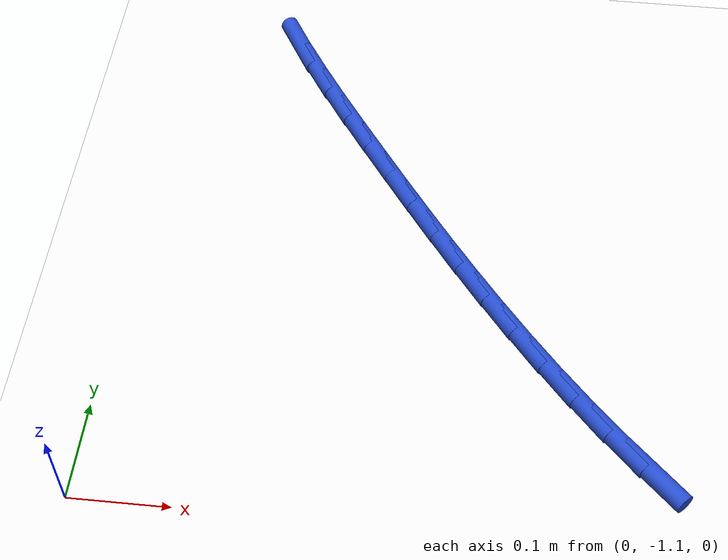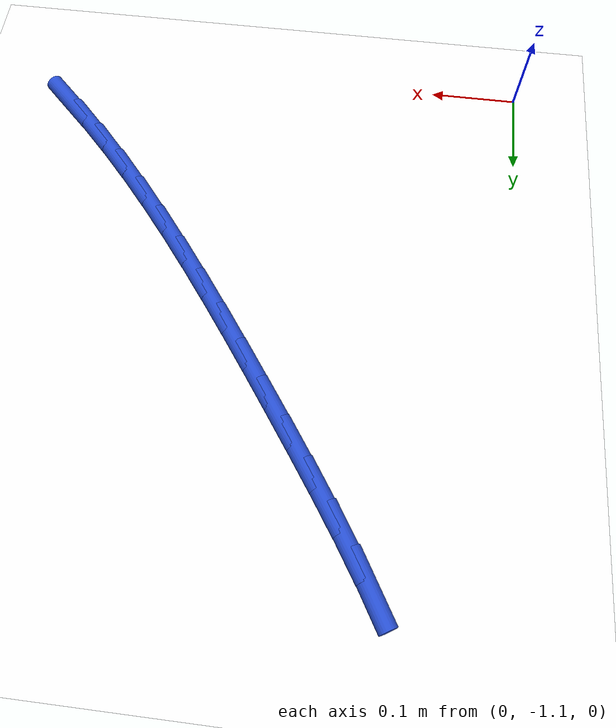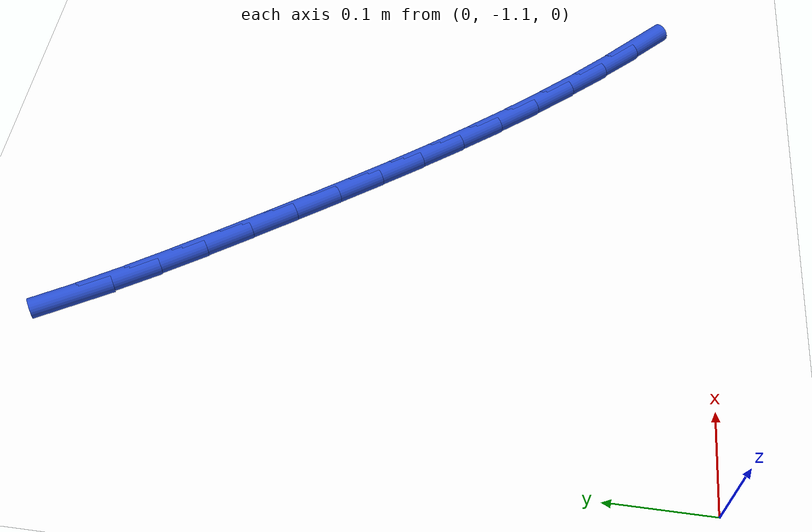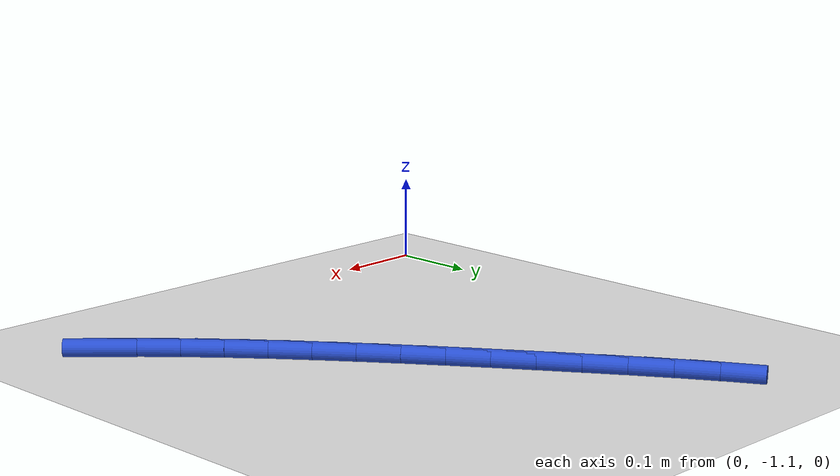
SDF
<sdf version="1.6">
 <world name="default">
  <model name="ground_plane">
   <static>1</static>
   <link name="link">
    <collision name="collision">
     <geometry><plane><normal>0 0 1</normal><size>100 100</size></plane></geometry>
     <surface><friction><ode><mu>100</mu><mu2>50</mu2></ode></friction></surface>
    </collision>
    <visual name="visual">
     <cast_shadows>0</cast_shadows>
     <geometry><plane><normal>0 0 1</normal><size>100 100</size></plane></geometry>
     <material>
      <script><uri>file://media/materials/scripts/gazebo.material</uri><name>Gazebo/WhiteGlow</name></script>
     </material>
    </visual>
   </link>
  </model>
  <model name="line">
   <link name="link_155">
    <pose>0.541692474409567 -1.0251973411364637 0.01 0 1.57 -0.7798127757034378</pose>
    <collision name="collision">
     <geometry><cylinder><radius>0.01</radius><length>0.08</length></cylinder></geometry>
    </collision>
    <visual name="visual">
     <material>
      <script><name>Gazebo/Blue</name><uri>file://media/materials/scripts/gazebo.material</uri></script>
     </material>
     <geometry><cylinder><radius>0.01</radius><length>0.08</length></cylinder></geometry>
    </visual>
   </link>
   <link name="link_156">
    <pose>0.5081916762979343 -0.9920686981551643 0.01 0 1.57 -0.8134637955770193</pose>
    <collision name="collision">
     <geometry><cylinder><radius>0.01</radius><length>0.08</length></cylinder></geometry>
    </collision>
    <visual name="visual">
     <material>
      <script><name>Gazebo/Blue</name><uri>file://media/materials/scripts/gazebo.material</uri></script>
     </material>
     <geometry><cylinder><radius>0.01</radius><length>0.08</length></cylinder></geometry>
    </visual>
   </link>
   <link name="link_157">
    <pose>0.47571243499285176 -0.9577132051250692 0.01 0 1.57 -0.8436202444590302</pose>
    <collision name="collision">
     <geometry><cylinder><radius>0.01</radius><length>0.08</length></cylinder></geometry>
    </collision>
    <visual name="visual">
     <material>
      <script><name>Gazebo/Blue</name><uri>file://media/materials/scripts/gazebo.material</uri></script>
     </material>
     <geometry><cylinder><radius>0.01</radius><length>0.08</length></cylinder></geometry>
    </visual>
   </link>
   <link name="link_158">
    <pose>0.44416530922071495 -0.9222608143700242 0.01 0 1.57 -0.8703328197037283</pose>
    <collision name="collision">
     <geometry><cylinder><radius>0.01</radius><length>0.08</length></cylinder></geometry>
    </collision>
    <visual name="visual">
     <material>
      <script><name>Gazebo/Blue</name><uri>file://media/materials/scripts/gazebo.material</uri></script>
     </material>
     <geometry><cylinder><radius>0.01</radius><length>0.08</length></cylinder></geometry>
    </visual>
   </link>
   <link name="link_159">
    <pose>0.41346085770791835 -0.8858414782138736 0.01 0 1.57 -0.8936679082704501</pose>
    <collision name="collision">
     <geometry><cylinder><radius>0.01</radius><length>0.08</length></cylinder></geometry>
    </collision>
    <visual name="visual">
     <material>
      <script><name>Gazebo/Blue</name><uri>file://media/materials/scripts/gazebo.material</uri></script>
     </material>
     <geometry><cylinder><radius>0.01</radius><length>0.08</length></cylinder></geometry>
    </visual>
   </link>
   <link name="link_160">
    <pose>0.38350963918085834 -0.8485851489804649 0.01 0 1.57 -0.9136982963083283</pose>
    <collision name="collision">
     <geometry><cylinder><radius>0.01</radius><length>0.08</length></cylinder></geometry>
    </collision>
    <visual name="visual">
     <material>
      <script><name>Gazebo/Blue</name><uri>file://media/materials/scripts/gazebo.material</uri></script>
     </material>
     <geometry><cylinder><radius>0.01</radius><length>0.08</length></cylinder></geometry>
    </visual>
   </link>
   <link name="link_161">
    <pose>0.35422221236592955 -0.8106217789936421 0.01 0 1.57 -0.9304956496135951</pose>
    <collision name="collision">
     <geometry><cylinder><radius>0.01</radius><length>0.08</length></cylinder></geometry>
    </collision>
    <visual name="visual">
     <material>
      <script><name>Gazebo/Blue</name><uri>file://media/materials/scripts/gazebo.material</uri></script>
     </material>
     <geometry><cylinder><radius>0.01</radius><length>0.08</length></cylinder></geometry>
    </visual>
   </link>
   <link name="link_162">
    <pose>0.3255091359895272 -0.7720813205772513 0.01 0 1.57 -0.9441245835110783</pose>
    <collision name="collision">
     <geometry><cylinder><radius>0.01</radius><length>0.08</length></cylinder></geometry>
    </collision>
    <visual name="visual">
     <material>
      <script><name>Gazebo/Blue</name><uri>file://media/materials/scripts/gazebo.material</uri></script>
     </material>
     <geometry><cylinder><radius>0.01</radius><length>0.08</length></cylinder></geometry>
    </visual>
   </link>
   <link name="link_163">
    <pose>0.2972809687780462 -0.7330937260551376 0.01 0 1.57 -0.954638077407688</pose>
    <collision name="collision">
     <geometry><cylinder><radius>0.01</radius><length>0.08</length></cylinder></geometry>
    </collision>
    <visual name="visual">
     <material>
      <script><name>Gazebo/Blue</name><uri>file://media/materials/scripts/gazebo.material</uri></script>
     </material>
     <geometry><cylinder><radius>0.01</radius><length>0.08</length></cylinder></geometry>
    </visual>
   </link>
   <link name="link_164">
    <pose>0.26944826945788214 -0.6937889477511464 0.01 0 1.57 -0.9620739806774044</pose>
    <collision name="collision">
     <geometry><cylinder><radius>0.01</radius><length>0.08</length></cylinder></geometry>
    </collision>
    <visual name="visual">
     <material>
      <script><name>Gazebo/Blue</name><uri>file://media/materials/scripts/gazebo.material</uri></script>
     </material>
     <geometry><cylinder><radius>0.01</radius><length>0.08</length></cylinder></geometry>
    </visual>
   </link>
   <link name="link_165">
    <pose>0.24192159675542949 -0.654296937989123 0.01 0 1.57 -0.9670756566693437</pose>
    <collision name="collision">
     <geometry><cylinder><radius>0.01</radius><length>0.08</length></cylinder></geometry>
    </collision>
    <visual name="visual">
     <material>
      <script><name>Gazebo/Blue</name><uri>file://media/materials/scripts/gazebo.material</uri></script>
     </material>
     <geometry><cylinder><radius>0.01</radius><length>0.08</length></cylinder></geometry>
    </visual>
   </link>
   <link name="link_166">
    <pose>0.21463680122505457 -0.6147315579923623 0.01 0 1.57 -0.97590453705673</pose>
    <collision name="collision">
     <geometry><cylinder><radius>0.01</radius><length>0.08</length></cylinder></geometry>
    </collision>
    <visual name="visual">
     <material>
      <script><name>Gazebo/Blue</name><uri>file://media/materials/scripts/gazebo.material</uri></script>
     </material>
     <geometry><cylinder><radius>0.01</radius><length>0.08</length></cylinder></geometry>
    </visual>
   </link>
   <link name="link_167">
    <pose>0.1877827955854132 -0.5750456664367698 0.01 0 1.57 -0.9922502857865608</pose>
    <collision name="collision">
     <geometry><cylinder><radius>0.01</radius><length>0.08</length></cylinder></geometry>
    </collision>
    <visual name="visual">
     <material>
      <script><name>Gazebo/Blue</name><uri>file://media/materials/scripts/gazebo.material</uri></script>
     </material>
     <geometry><cylinder><radius>0.01</radius><length>0.08</length></cylinder></geometry>
    </visual>
   </link>
   <link name="link_168">
    <pose>0.1616942052759706 -0.5350994170326424 0.01 0 1.57 -1.0163144075462454</pose>
    <collision name="collision">
     <geometry><cylinder><radius>0.01</radius><length>0.08</length></cylinder></geometry>
    </collision>
    <visual name="visual">
     <material>
      <script><name>Gazebo/Blue</name><uri>file://media/materials/scripts/gazebo.material</uri></script>
     </material>
     <geometry><cylinder><radius>0.01</radius><length>0.08</length></cylinder></geometry>
    </visual>
   </link>
   <link name="link_169">
    <pose>0.13670740485893768 -0.49475185066798677 0.01 0 1.57 -1.04828270937196</pose>
    <collision name="collision">
     <geometry><cylinder><radius>0.01</radius><length>0.08</length></cylinder></geometry>
    </collision>
    <visual name="visual">
     <material>
      <script><name>Gazebo/Blue</name><uri>file://media/materials/scripts/gazebo.material</uri></script>
     </material>
     <geometry><cylinder><radius>0.01</radius><length>0.08</length></cylinder></geometry>
    </visual>
   </link>
  </model>
 </world>
</sdf>
